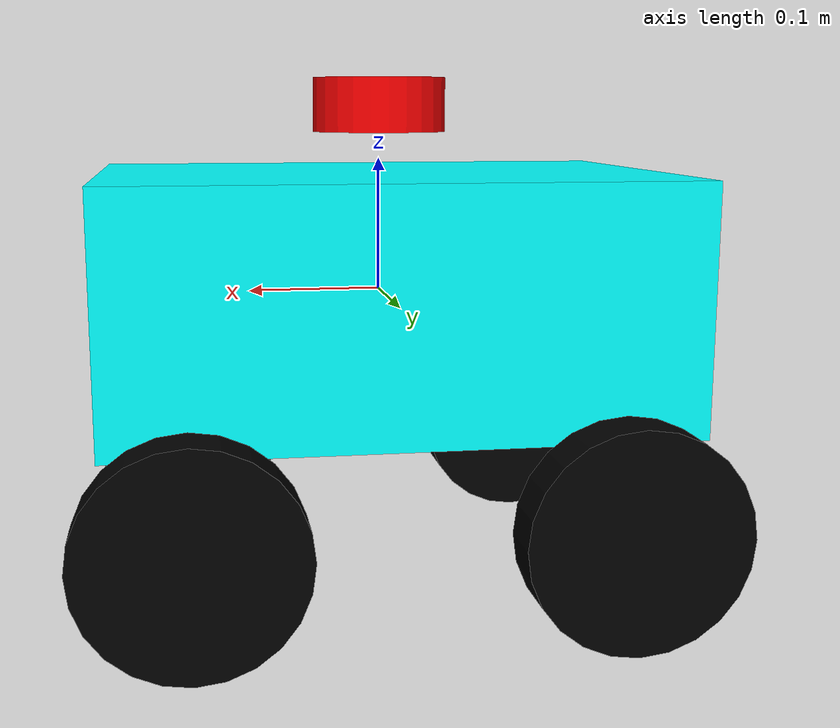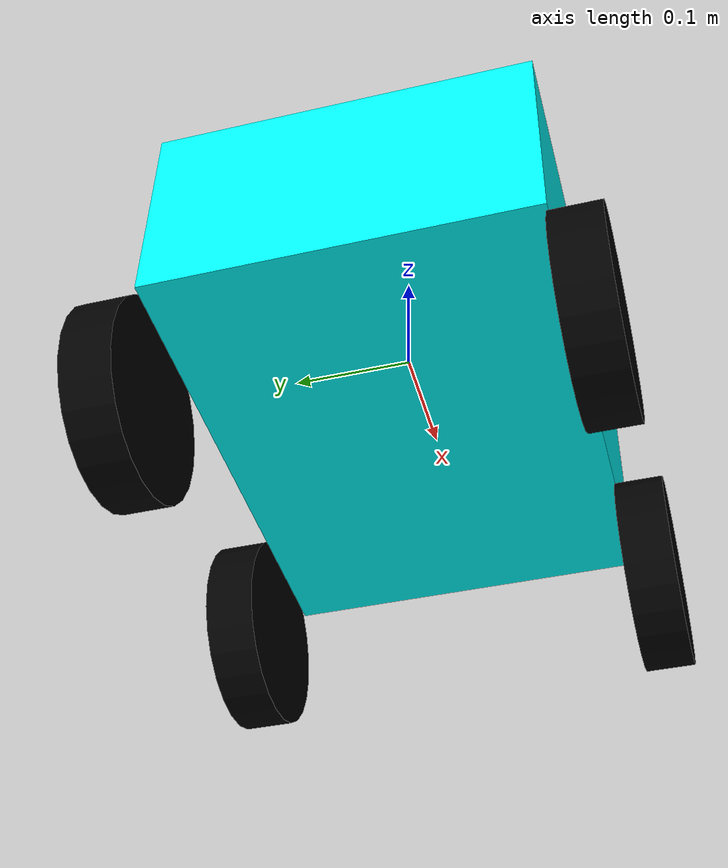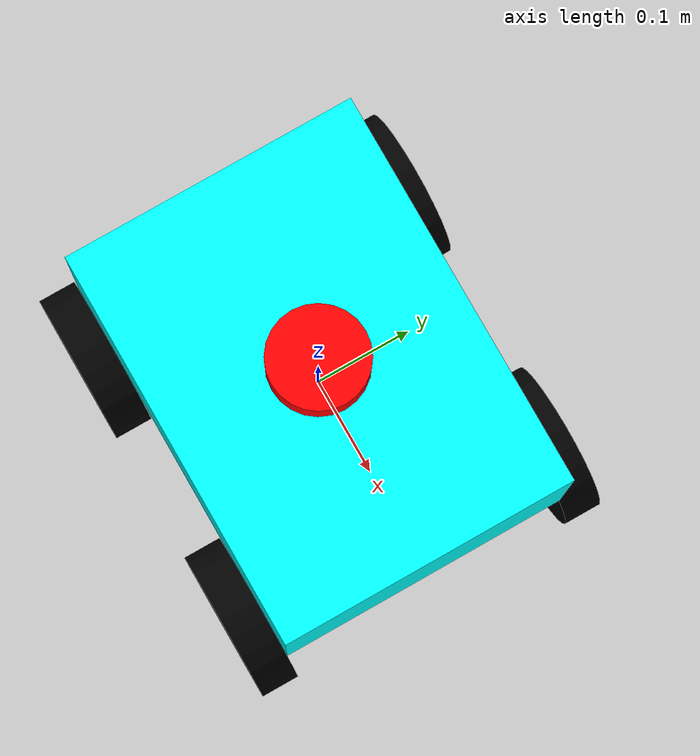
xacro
<?xml version="1.0"?>
<robot xmlns:xacro="http://www.ros.org/wiki/xacro" name="patrol_robot">

  <!-- 定义一些常用参数 -->
  <xacro:property name="base_width" value="0.31"/>
  <xacro:property name="base_length" value="0.42"/>
  <xacro:property name="base_height" value="0.18"/>
  <xacro:property name="wheel_radius" value="0.08"/>
  <xacro:property name="wheel_width" value="0.04"/>
  <xacro:property name="wheel_ygap" value="0.02"/>
  <xacro:property name="wheel_xgap" value="0.15"/>  <!-- 前后轮距离 -->

  <!-- 机器人底盘 -->
  <link name="base_link">
    <visual>
      <geometry>
        <box size="${base_length} ${base_width} ${base_height}"/>
      </geometry>
      <material name="Cyan">
        <color rgba="0 1.0 1.0 1.0"/>
      </material>
    </visual>
    <collision>
      <geometry>
        <box size="${base_length} ${base_width} ${base_height}"/>
      </geometry>
    </collision>
    <inertial>
      <mass value="20"/>
      <!-- 重心在底盘中心稍微偏下 -->
      <origin xyz="0 0 ${-base_height/4}" rpy="0 0 0"/>
      <inertia ixx="${20 * (base_width*base_width + base_height*base_height) / 12.0}"
               iyy="${20 * (base_length*base_length + base_height*base_height) / 12.0}"
               izz="${20 * (base_length*base_length + base_width*base_width) / 12.0}"
               ixy="0.0" ixz="0.0" iyz="0.0"/>
    </inertial>
  </link>

  <!-- 前左轮 -->
  <link name="front_left_wheel">
    <visual>
      <geometry>
        <cylinder radius="${wheel_radius}" length="${wheel_width}"/>
      </geometry>
      <material name="Black">
        <color rgba="0.0 0.0 0.0 1.0"/>
      </material>
    </visual>
    <collision>
      <geometry>
        <cylinder radius="${wheel_radius}" length="${wheel_width}"/>
      </geometry>
    </collision>
    <inertial>
      <mass value="1.5"/>
      <origin xyz="0 0 0" rpy="0 0 0"/>
      <inertia ixx="0.1" ixy="0.0" ixz="0.0" iyy="0.1" iyz="0.0" izz="0.1"/>
    </inertial>
  </link>

  <!-- 前右轮 -->
  <link name="front_right_wheel">
    <visual>
      <geometry>
        <cylinder radius="${wheel_radius}" length="${wheel_width}"/>
      </geometry>
      <material name="Black">
        <color rgba="0.0 0.0 0.0 1.0"/>
      </material>
    </visual>
    <collision>
      <geometry>
        <cylinder radius="${wheel_radius}" length="${wheel_width}"/>
      </geometry>
    </collision>
    <inertial>
      <mass value="1.5"/>
      <origin xyz="0 0 0" rpy="0 0 0"/>
      <inertia ixx="0.1" ixy="0.0" ixz="0.0" iyy="0.1" iyz="0.0" izz="0.1"/>
    </inertial>
  </link>

  <!-- 后左轮 -->
  <link name="rear_left_wheel">
    <visual>
      <geometry>
        <cylinder radius="${wheel_radius}" length="${wheel_width}"/>
      </geometry>
      <material name="Black">
        <color rgba="0.0 0.0 0.0 1.0"/>
      </material>
    </visual>
    <collision>
      <geometry>
        <cylinder radius="${wheel_radius}" length="${wheel_width}"/>
      </geometry>
    </collision>
    <inertial>
      <mass value="1.5"/>
      <origin xyz="0 0 0" rpy="0 0 0"/>
      <inertia ixx="0.1" ixy="0.0" ixz="0.0" iyy="0.1" iyz="0.0" izz="0.1"/>
    </inertial>
  </link>

  <!-- 后右轮 -->
  <link name="rear_right_wheel">
    <visual>
      <geometry>
        <cylinder radius="${wheel_radius}" length="${wheel_width}"/>
      </geometry>
      <material name="Black">
        <color rgba="0.0 0.0 0.0 1.0"/>
      </material>
    </visual>
    <collision>
      <geometry>
        <cylinder radius="${wheel_radius}" length="${wheel_width}"/>
      </geometry>
    </collision>
    <inertial>
      <mass value="1.5"/>
      <origin xyz="0 0 0" rpy="0 0 0"/>
      <inertia ixx="0.1" ixy="0.0" ixz="0.0" iyy="0.1" iyz="0.0" izz="0.1"/>
    </inertial>
  </link>

  <!-- 前左轮关节 -->
  <joint name="front_left_wheel_joint" type="continuous">
    <parent link="base_link"/>
    <child link="front_left_wheel"/>
    <origin xyz="${wheel_xgap} ${base_width/2+wheel_ygap} ${-base_height/2-wheel_radius+0.02}" rpy="-1.5708 0 0"/>
    <axis xyz="0 0 1"/>
  </joint>

  <!-- 前右轮关节 -->
  <joint name="front_right_wheel_joint" type="continuous">
    <parent link="base_link"/>
    <child link="front_right_wheel"/>
    <origin xyz="${wheel_xgap} ${-base_width/2-wheel_ygap} ${-base_height/2-wheel_radius+0.02}" rpy="-1.5708 0 0"/>
    <axis xyz="0 0 1"/>
  </joint>

  <!-- 后左轮关节 -->
  <joint name="rear_left_wheel_joint" type="continuous">
    <parent link="base_link"/>
    <child link="rear_left_wheel"/>
    <origin xyz="${-wheel_xgap} ${base_width/2+wheel_ygap} ${-base_height/2-wheel_radius+0.02}" rpy="-1.5708 0 0"/>
    <axis xyz="0 0 1"/>
  </joint>

  <!-- 后右轮关节 -->
  <joint name="rear_right_wheel_joint" type="continuous">
    <parent link="base_link"/>
    <child link="rear_right_wheel"/>
    <origin xyz="${-wheel_xgap} ${-base_width/2-wheel_ygap} ${-base_height/2-wheel_radius+0.02}" rpy="-1.5708 0 0"/>
    <axis xyz="0 0 1"/>
  </joint>

  <!-- 激光雷达 -->
  <link name="laser_link">
    <visual>
      <geometry>
        <cylinder radius="0.05" length="0.04"/>
      </geometry>
      <material name="Red">
        <color rgba="1.0 0.0 0.0 1.0"/>
      </material>
    </visual>
    <collision>
      <geometry>
        <cylinder radius="0.05" length="0.04"/>
      </geometry>
    </collision>
    <inertial>
      <mass value="0.1"/>
      <origin xyz="0 0 0" rpy="0 0 0"/>
      <inertia ixx="0.01" ixy="0.0" ixz="0.0" iyy="0.01" iyz="0.0" izz="0.01"/>
    </inertial>
  </link>

  <joint name="laser_joint" type="fixed">
    <parent link="base_link"/>
    <child link="laser_link"/>
    <origin xyz="0 0 ${base_height/2+0.05}" rpy="0 0 0"/>
  </joint>

<!-- Gazebo插件：兼容的四轮驱动控制器 -->
  <gazebo>
    <plugin name="diff_drive" filename="libgazebo_ros_diff_drive.so">
      <ros>
        <namespace>/</namespace>
      </ros>

      <!-- 使用前轮作为主驱动轮 -->
      <left_joint>front_left_wheel_joint</left_joint>
      <right_joint>front_right_wheel_joint</right_joint>

      <!-- 物理参数 -->
      <wheel_separation>0.35</wheel_separation>
      <wheel_diameter>${2*wheel_radius}</wheel_diameter>
      <max_wheel_torque>30</max_wheel_torque>
      <max_wheel_acceleration>3.0</max_wheel_acceleration>

      <!-- ROS话题 -->
      <command_topic>cmd_vel</command_topic>
      <publish_odom>true</publish_odom>
      <publish_odom_tf>true</publish_odom_tf>
      <publish_wheel_tf>true</publish_wheel_tf>
      <odometry_topic>odom</odometry_topic>
      <odometry_frame>odom</odometry_frame>
      <robot_base_frame>base_link</robot_base_frame>

      <!-- 更新频率降低，减少计算负担 -->
      <update_rate>20.0</update_rate>
    </plugin>
  </gazebo>

  <!-- 后轮被动跟随（增加摩擦阻尼） -->
  <gazebo reference="rear_left_wheel">
    <material>Gazebo/Black</material>
    <mu1>0.8</mu1>
    <mu2>0.8</mu2>
  </gazebo>

  <gazebo reference="rear_right_wheel">
    <material>Gazebo/Black</material>
    <mu1>0.8</mu1>
    <mu2>0.8</mu2>
  </gazebo>

<!-- Gazebo激光雷达插件 - 优化版 -->
  <gazebo reference="laser_link">
    <sensor type="ray" name="laser_sensor">
      <pose>0 0 0 0 0 0</pose>
      <visualize>true</visualize>
      <update_rate>5</update_rate>  <!-- 降低频率 10→5 -->
      <ray>
        <scan>
          <horizontal>
            <samples>180</samples>  <!-- 降低采样点 360→180 -->
            <resolution>1</resolution>
            <min_angle>-1.5708</min_angle>  <!-- 180度扫描 -->
            <max_angle>1.5708</max_angle>
          </horizontal>
        </scan>
        <range>
          <min>0.20</min>
          <max>8.0</max>  <!-- 减少扫描距离 10→8 -->
          <resolution>0.02</resolution>  <!-- 降低分辨率 0.01→0.02 -->
        </range>
        <noise>
          <type>gaussian</type>
          <mean>0.0</mean>
          <stddev>0.01</stddev>
        </noise>
      </ray>
      <plugin name="gazebo_ros_laser" filename="libgazebo_ros_ray_sensor.so">
        <ros>
          <remapping>~/out:=scan</remapping>
        </ros>
        <output_type>sensor_msgs/LaserScan</output_type>
        <frame_name>laser_link</frame_name>
      </plugin>
    </sensor>
  </gazebo>

  <!-- Gazebo材质定义 -->
  <gazebo reference="base_link">
    <material>Gazebo/Blue</material>
  </gazebo>

  <gazebo reference="front_left_wheel">
    <material>Gazebo/Black</material>
    <mu1>1.0</mu1>
    <mu2>1.0</mu2>
  </gazebo>

  <gazebo reference="front_right_wheel">
    <material>Gazebo/Black</material>
    <mu1>1.0</mu1>
    <mu2>1.0</mu2>
  </gazebo>

  <gazebo reference="rear_left_wheel">
    <material>Gazebo/Black</material>
    <mu1>1.0</mu1>
    <mu2>1.0</mu2>
  </gazebo>

  <gazebo reference="rear_right_wheel">
    <material>Gazebo/Black</material>
    <mu1>1.0</mu1>
    <mu2>1.0</mu2>
  </gazebo>

  <gazebo reference="laser_link">
    <material>Gazebo/Red</material>
  </gazebo>

</robot>
